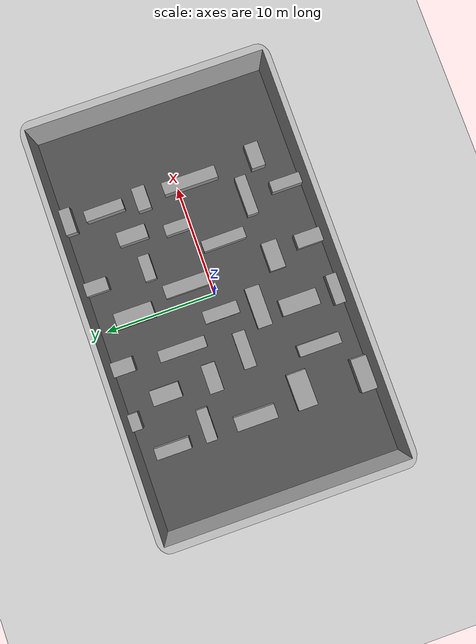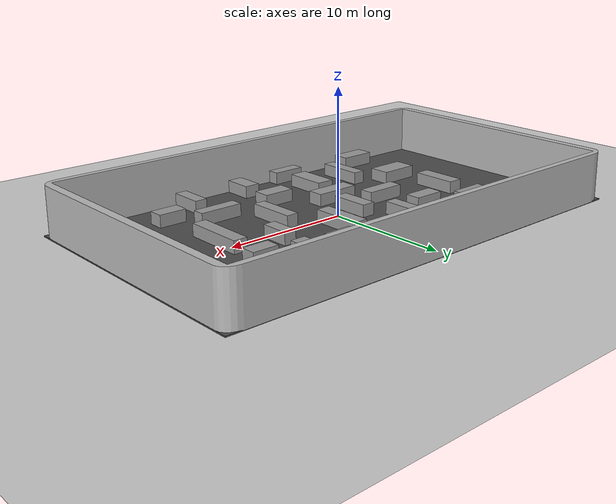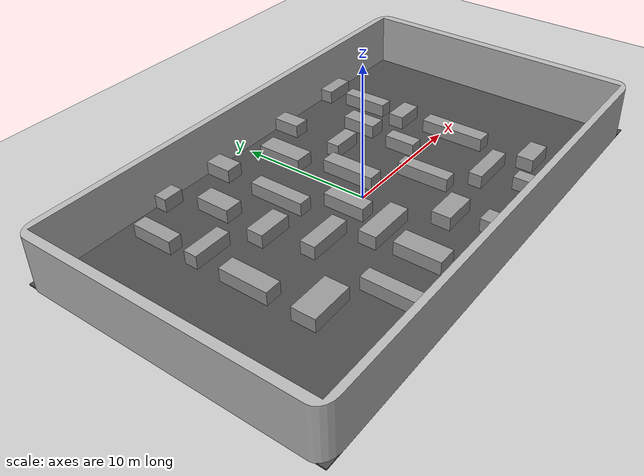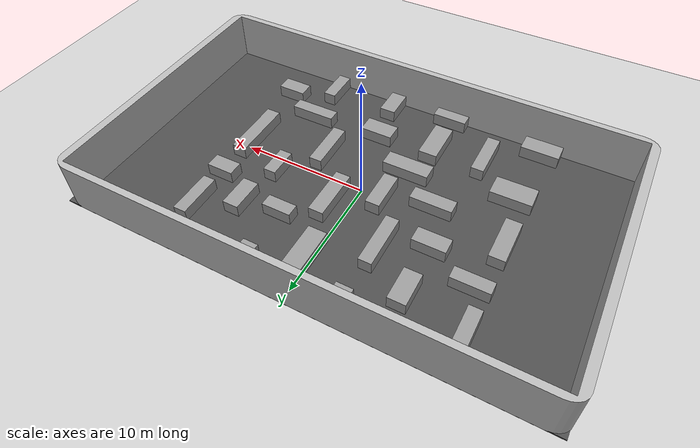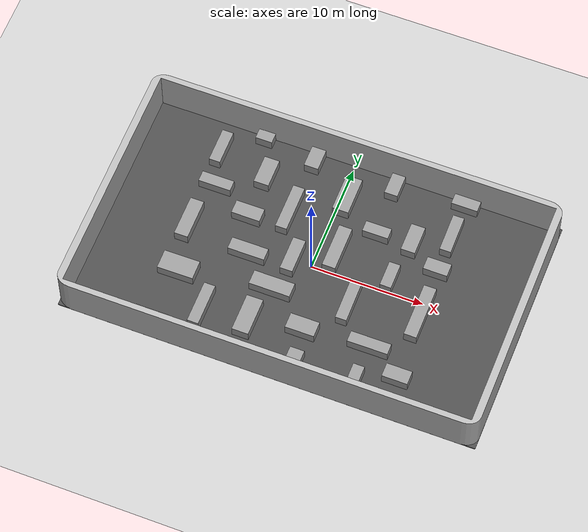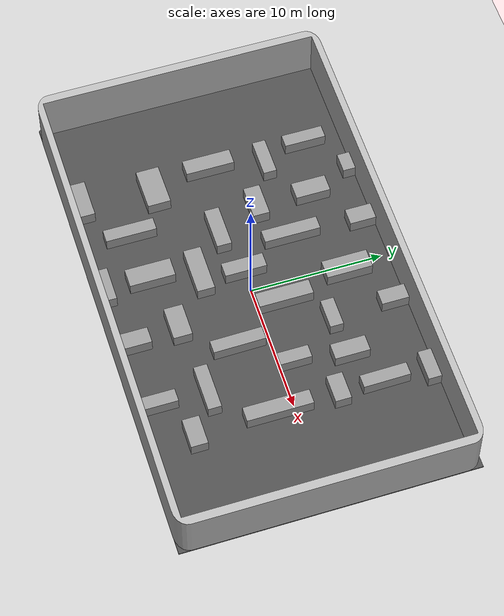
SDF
<sdf version="1.6">
 <world name="default">
  <light name="sun" type="directional">
   <cast_shadows>0</cast_shadows>
   <pose>0 0 100 0 -0 0</pose>
   <diffuse>0.8 0.8 0.8 1</diffuse>
   <specular>0.1 0.1 0.1 1</specular>
   <attenuation>
    <range>1000</range>
    <constant>0.9</constant>
    <linear>0.01</linear>
    <quadratic>0.001</quadratic>
   </attenuation>
   <direction>0 0 -1</direction>
  </light>
  <model name="ground_plane">
   <static>1</static>
   <link name="link">
    <collision name="collision">
     <geometry><plane><normal>0 0 1</normal><size>100 100</size></plane></geometry>
     <surface><friction><ode><mu>100</mu><mu2>50</mu2></ode></friction></surface>
    </collision>
    <visual name="visual">
     <cast_shadows>0</cast_shadows>
     <geometry><plane><normal>0 0 1</normal><size>100 100</size></plane></geometry>
     <material>
      <script><uri>file://media/materials/scripts/gazebo.material</uri><name>Gazebo/Grey</name></script>
     </material>
    </visual>
   </link>
  </model>
  <gravity>0 0 -9.8</gravity>
  <magnetic_field>6e-06 2.3e-05 -4.2e-05</magnetic_field>
  <atmosphere type="adiabatic"/>
  <physics name="default_physics" default="0" type="ode">
   <max_step_size>0.001</max_step_size>
   <real_time_factor>1</real_time_factor>
   <real_time_update_rate>1000</real_time_update_rate>
  </physics>
  <scene><ambient>0.4 0.4 0.4 1</ambient><background>0.7 0.7 0.7 1</background><shadows>1</shadows></scene>
  <spherical_coordinates>
   <surface_model>EARTH_WGS84</surface_model>
   <latitude_deg>0</latitude_deg>
   <longitude_deg>0</longitude_deg>
   <elevation>0</elevation>
   <heading_deg>0</heading_deg>
  </spherical_coordinates>
  <model name="asphalt_plane">
   <static>1</static>
   <link name="link">
    <collision name="collision"><geometry><box><size>37 22 0.1</size></box></geometry></collision>
    <visual name="visual">
     <cast_shadows>0</cast_shadows>
     <geometry><box><size>37 22 0.1</size></box></geometry>
     <material>
      <script>
       <uri>model://asphalt_plane/materials/scripts</uri>
       <uri>model://asphalt_plane/materials/textures</uri>
       <name>vrc/asphalt</name>
      </script>
     </material>
    </visual>
   </link>
   <pose>0.054655 0.000182 0 0 -0 0</pose>
  </model>
  <model name="yard_square">
   <pose>0 0 0 1.5708 -0 1.5708</pose>
   <static>1</static>
   <link name="body">
    <collision name="collision">
     <geometry><mesh><uri>model://yard_square/yard_square.stl</uri><scale>0.1 0.1 0.13</scale></mesh></geometry>
    </collision>
    <visual name="visual">
     <geometry><mesh><uri>model://yard_square/yard_square.stl</uri><scale>0.1 0.1 0.13</scale></mesh></geometry>
    </visual>
   </link>
  </model>
  <audio><device>default</device></audio>
  <model name="unit_box_0">
   <pose>-1.67304 0.014335 0.550002 -8e-06 -0 4.5e-05</pose>
   <static>1</static>
   <link name="link">
    <inertial>
     <mass>1</mass>
     <inertia>
      <ixx>0.166667</ixx>
      <ixy>0</ixy>
      <ixz>0</ixz>
      <iyy>0.166667</iyy>
      <iyz>0</iyz>
      <izz>0.166667</izz>
     </inertia>
    </inertial>
    <collision name="collision"><geometry><box><size>1.12328 3.14231 1</size></box></geometry></collision>
    <visual name="visual">
     <geometry><box><size>1.12328 3.14231 1</size></box></geometry>
     <material>
      <script><name>Gazebo/Grey</name><uri>file://media/materials/scripts/gazebo.material</uri></script>
     </material>
    </visual>
   </link>
  </model>
  <model name="unit_box_2">
   <pose>0.511002 7.15924 0.549996 -7e-06 -0 0.001667</pose>
   <static>1</static>
   <link name="link">
    <inertial>
     <mass>1</mass>
     <inertia>
      <ixx>0.166667</ixx>
      <ixy>0</ixy>
      <ixz>0</ixz>
      <iyy>0.166667</iyy>
      <iyz>0</iyz>
      <izz>0.166667</izz>
     </inertia>
    </inertial>
    <collision name="collision"><geometry><box><size>1.4552 3.44615 1</size></box></geometry></collision>
    <visual name="visual">
     <geometry><box><size>1.4552 3.44615 1</size></box></geometry>
     <material>
      <script><name>Gazebo/Grey</name><uri>file://media/materials/scripts/gazebo.material</uri></script>
     </material>
    </visual>
   </link>
  </model>
  <model name="unit_box_3">
   <pose>3.96739 9.65811 0.549227 0 0.000383 -0.000473</pose>
   <static>1</static>
   <link name="link">
    <inertial>
     <mass>1</mass>
     <inertia>
      <ixx>0.166667</ixx>
      <ixy>0</ixy>
      <ixz>0</ixz>
      <iyy>0.166667</iyy>
      <iyz>0</iyz>
      <izz>0.166667</izz>
     </inertia>
    </inertial>
    <collision name="collision"><geometry><box><size>1.18061 2.38675 1</size></box></geometry></collision>
    <visual name="visual">
     <geometry><box><size>1.18061 2.38675 1</size></box></geometry>
     <material>
      <script><name>Gazebo/Grey</name><uri>file://media/materials/scripts/gazebo.material</uri></script>
     </material>
    </visual>
   </link>
  </model>
  <model name="unit_box_4">
   <pose>-10.2534 -4.3352 0.544487 0 -0 0.009696</pose>
   <static>1</static>
   <link name="link">
    <inertial>
     <mass>1</mass>
     <inertia>
      <ixx>0.166667</ixx>
      <ixy>0</ixy>
      <ixz>0</ixz>
      <iyy>0.166667</iyy>
      <iyz>0</iyz>
      <izz>0.166667</izz>
     </inertia>
    </inertial>
    <collision name="collision"><geometry><box><size>3.1937 1.73528 1</size></box></geometry></collision>
    <visual name="visual">
     <geometry><box><size>3.1937 1.73528 1</size></box></geometry>
     <material>
      <script><name>Gazebo/Grey</name><uri>file://media/materials/scripts/gazebo.material</uri></script>
     </material>
    </visual>
   </link>
  </model>
  <model name="unit_box_5">
   <pose>-2.28776 -3.21003 0.549982 0 1.7e-05 -1.57091</pose>
   <static>1</static>
   <link name="link">
    <inertial>
     <mass>1</mass>
     <inertia>
      <ixx>0.166667</ixx>
      <ixy>0</ixy>
      <ixz>0</ixz>
      <iyy>0.166667</iyy>
      <iyz>0</iyz>
      <izz>0.166667</izz>
     </inertia>
    </inertial>
    <collision name="collision"><geometry><box><size>1.31392 3.64155 1</size></box></geometry></collision>
    <visual name="visual">
     <geometry><box><size>1.31392 3.64155 1</size></box></geometry>
     <material>
      <script><name>Gazebo/Grey</name><uri>file://media/materials/scripts/gazebo.material</uri></script>
     </material>
    </visual>
   </link>
  </model>
  <model name="unit_box_9">
   <pose>7.25696 -5.48595 0.549886 0 -7.9e-05 0.003843</pose>
   <static>1</static>
   <link name="link">
    <inertial>
     <mass>1</mass>
     <inertia>
      <ixx>0.166667</ixx>
      <ixy>0</ixy>
      <ixz>0</ixz>
      <iyy>0.166667</iyy>
      <iyz>0</iyz>
      <izz>0.166667</izz>
     </inertia>
    </inertial>
    <collision name="collision"><geometry><box><size>3.55853 1 1</size></box></geometry></collision>
    <visual name="visual">
     <geometry><box><size>3.55853 1 1</size></box></geometry>
     <material>
      <script><name>Gazebo/Grey</name><uri>file://media/materials/scripts/gazebo.material</uri></script>
     </material>
    </visual>
   </link>
  </model>
  <model name="unit_box_10">
   <pose>-5.38244 -0.821402 0.547399 -0.000838 0 0</pose>
   <static>1</static>
   <link name="link">
    <inertial>
     <mass>1</mass>
     <inertia>
      <ixx>0.166667</ixx>
      <ixy>0</ixy>
      <ixz>0</ixz>
      <iyy>0.166667</iyy>
      <iyz>0</iyz>
      <izz>0.166667</izz>
     </inertia>
    </inertial>
    <collision name="collision"><geometry><box><size>3.27683 1.11673 1</size></box></geometry></collision>
    <visual name="visual">
     <geometry><box><size>3.27683 1.11673 1</size></box></geometry>
     <material>
      <script><name>Gazebo/Grey</name><uri>file://media/materials/scripts/gazebo.material</uri></script>
     </material>
    </visual>
   </link>
  </model>
  <model name="unit_box_1">
   <pose>10.1743 -1.20922 0.550023 6e-06 -0 0.000254</pose>
   <static>1</static>
   <link name="link">
    <inertial>
     <mass>1</mass>
     <inertia>
      <ixx>0.166667</ixx>
      <ixy>0</ixy>
      <ixz>0</ixz>
      <iyy>0.166667</iyy>
      <iyz>0</iyz>
      <izz>0.166667</izz>
     </inertia>
    </inertial>
    <collision name="collision"><geometry><box><size>1.12056 4.92766 1</size></box></geometry></collision>
    <visual name="visual">
     <geometry><box><size>1.12056 4.92766 1</size></box></geometry>
     <material>
      <script><name>Gazebo/Grey</name><uri>file://media/materials/scripts/gazebo.material</uri></script>
     </material>
    </visual>
   </link>
  </model>
  <model name="unit_box_6">
   <pose>-3.56495 4.1999 0.549214 -0.00038 0 7.5e-05</pose>
   <static>1</static>
   <link name="link">
    <inertial>
     <mass>1</mass>
     <inertia>
      <ixx>0.166667</ixx>
      <ixy>0</ixy>
      <ixz>0</ixz>
      <iyy>0.166667</iyy>
      <iyz>0</iyz>
      <izz>0.166667</izz>
     </inertia>
    </inertial>
    <collision name="collision"><geometry><box><size>1.02781 4.24453 1</size></box></geometry></collision>
    <visual name="visual">
     <geometry><box><size>1.02781 4.24453 1</size></box></geometry>
     <material>
      <script><name>Gazebo/Grey</name><uri>file://media/materials/scripts/gazebo.material</uri></script>
     </material>
    </visual>
   </link>
  </model>
  <model name="unit_box_8">
   <pose>-3.09555 -6.66525 0.549084 0.00039 -0 0</pose>
   <static>1</static>
   <link name="link">
    <inertial>
     <mass>1</mass>
     <inertia>
      <ixx>0.166667</ixx>
      <ixy>0</ixy>
      <ixz>0</ixz>
      <iyy>0.166667</iyy>
      <iyz>0</iyz>
      <izz>0.166667</izz>
     </inertia>
    </inertial>
    <collision name="collision"><geometry><box><size>1.46752 3.42649 1</size></box></geometry></collision>
    <visual name="visual">
     <geometry><box><size>1.46752 3.42649 1</size></box></geometry>
     <material>
      <script><name>Gazebo/Grey</name><uri>file://media/materials/scripts/gazebo.material</uri></script>
     </material>
    </visual>
   </link>
  </model>
  <model name="unit_box_11">
   <pose>1.53934 2.04591 0.552867 0.00034 -0 0</pose>
   <static>1</static>
   <link name="link">
    <inertial>
     <mass>1</mass>
     <inertia>
      <ixx>0.166667</ixx>
      <ixy>0</ixy>
      <ixz>0</ixz>
      <iyy>0.166667</iyy>
      <iyz>0</iyz>
      <izz>0.166667</izz>
     </inertia>
    </inertial>
    <collision name="collision"><geometry><box><size>1.17874 4.07362 1</size></box></geometry></collision>
    <visual name="visual">
     <geometry><box><size>1.17874 4.07362 1</size></box></geometry>
     <material>
      <script><name>Gazebo/Grey</name><uri>file://media/materials/scripts/gazebo.material</uri></script>
     </material>
    </visual>
   </link>
  </model>
  <model name="unit_box_12">
   <pose>7.22515 5.1045 0.547927 -0.000766 0 0</pose>
   <static>1</static>
   <link name="link">
    <inertial>
     <mass>1</mass>
     <inertia>
      <ixx>0.166667</ixx>
      <ixy>0</ixy>
      <ixz>0</ixz>
      <iyy>0.166667</iyy>
      <iyz>0</iyz>
      <izz>0.166667</izz>
     </inertia>
    </inertial>
    <collision name="collision"><geometry><box><size>1.25351 2.6176 1</size></box></geometry></collision>
    <visual name="visual">
     <geometry><box><size>1.25351 2.6176 1</size></box></geometry>
     <material>
      <script><name>Gazebo/Grey</name><uri>file://media/materials/scripts/gazebo.material</uri></script>
     </material>
    </visual>
   </link>
  </model>
  <model name="unit_box_13">
   <pose>1.92941 -9.39136 0.549997 6e-06 -0 0.000172</pose>
   <static>1</static>
   <link name="link">
    <inertial>
     <mass>1</mass>
     <inertia>
      <ixx>0.166667</ixx>
      <ixy>0</ixy>
      <ixz>0</ixz>
      <iyy>0.166667</iyy>
      <iyz>0</iyz>
      <izz>0.166667</izz>
     </inertia>
    </inertial>
    <collision name="collision"><geometry><box><size>1.26783 2.46342 1</size></box></geometry></collision>
    <visual name="visual">
     <geometry><box><size>1.26783 2.46342 1</size></box></geometry>
     <material>
      <script><name>Gazebo/Grey</name><uri>file://media/materials/scripts/gazebo.material</uri></script>
     </material>
    </visual>
   </link>
  </model>
  <model name="unit_box_2_clone">
   <pose>-8.09503 10.0713 0.549998 -7e-06 -0 0.001667</pose>
   <static>1</static>
   <link name="link">
    <inertial>
     <mass>1</mass>
     <inertia>
      <ixx>0.166667</ixx>
      <ixy>0</ixy>
      <ixz>0</ixz>
      <iyy>0.166667</iyy>
      <iyz>0</iyz>
      <izz>0.166667</izz>
     </inertia>
    </inertial>
    <collision name="collision"><geometry><box><size>1.5 1 1</size></box></geometry></collision>
    <visual name="visual">
     <geometry><box><size>1.5 1 1</size></box></geometry>
     <material>
      <script><name>Gazebo/Grey</name><uri>file://media/materials/scripts/gazebo.material</uri></script>
     </material>
    </visual>
   </link>
  </model>
  <model name="unit_box_14">
   <pose>-11.158 0.193327 0.55 0 -0 0</pose>
   <static>1</static>
   <link name="link">
    <inertial>
     <mass>1</mass>
     <inertia>
      <ixx>0.166667</ixx>
      <ixy>0</ixy>
      <ixz>0</ixz>
      <iyy>0.166667</iyy>
      <iyz>0</iyz>
      <izz>0.166667</izz>
     </inertia>
    </inertial>
    <collision name="collision"><geometry><box><size>1.22641 3.68175 1</size></box></geometry></collision>
    <visual name="visual">
     <geometry><box><size>1.22641 3.68175 1</size></box></geometry>
     <material>
      <script><name>Gazebo/Grey</name><uri>file://media/materials/scripts/gazebo.material</uri></script>
     </material>
    </visual>
   </link>
  </model>
  <model name="unit_box_16">
   <pose>-11.2712 7.72064 0.549961 3.4e-05 -0 0</pose>
   <static>1</static>
   <link name="link">
    <inertial>
     <mass>1</mass>
     <inertia>
      <ixx>0.166667</ixx>
      <ixy>0</ixy>
      <ixz>0</ixz>
      <iyy>0.166667</iyy>
      <iyz>0</iyz>
      <izz>0.166667</izz>
     </inertia>
    </inertial>
    <collision name="collision"><geometry><box><size>1 3.13508 1</size></box></geometry></collision>
    <visual name="visual">
     <geometry><box><size>1 3.13508 1</size></box></geometry>
     <material>
      <script><name>Gazebo/Grey</name><uri>file://media/materials/scripts/gazebo.material</uri></script>
     </material>
    </visual>
   </link>
  </model>
  <model name="unit_box_17">
   <pose>-10.7177 -9.8351 0.549948 4.3e-05 0 -1e-06</pose>
   <static>1</static>
   <link name="link">
    <inertial>
     <mass>1</mass>
     <inertia>
      <ixx>0.166667</ixx>
      <ixy>0</ixy>
      <ixz>0</ixz>
      <iyy>0.166667</iyy>
      <iyz>0</iyz>
      <izz>0.166667</izz>
     </inertia>
    </inertial>
    <collision name="collision"><geometry><box><size>2.98242 1.49188 1</size></box></geometry></collision>
    <visual name="visual">
     <geometry><box><size>2.98242 1.49188 1</size></box></geometry>
     <material>
      <script><name>Gazebo/Grey</name><uri>file://media/materials/scripts/gazebo.material</uri></script>
     </material>
    </visual>
   </link>
  </model>
  <model name="unit_box_19">
   <pose>-3.04023 -10.0448 0.55 0 -0 0</pose>
   <static>1</static>
   <link name="link">
    <inertial>
     <mass>1</mass>
     <inertia>
      <ixx>0.166667</ixx>
      <ixy>0</ixy>
      <ixz>0</ixz>
      <iyy>0.166667</iyy>
      <iyz>0</iyz>
      <izz>0.166667</izz>
     </inertia>
    </inertial>
    <collision name="collision"><geometry><box><size>2.69644 1 1</size></box></geometry></collision>
    <visual name="visual">
     <geometry><box><size>2.69644 1 1</size></box></geometry>
     <material>
      <script><name>Gazebo/Grey</name><uri>file://media/materials/scripts/gazebo.material</uri></script>
     </material>
    </visual>
   </link>
  </model>
  <model name="unit_box">
   <pose>6.63649 1.13052 0.549958 3.6e-05 -0 0</pose>
   <static>1</static>
   <link name="link">
    <inertial>
     <mass>1</mass>
     <inertia>
      <ixx>0.166667</ixx>
      <ixy>0</ixy>
      <ixz>0</ixz>
      <iyy>0.166667</iyy>
      <iyz>0</iyz>
      <izz>0.166667</izz>
     </inertia>
    </inertial>
    <collision name="collision"><geometry><box><size>1 2.339 1</size></box></geometry></collision>
    <visual name="visual">
     <geometry><box><size>1 2.339 1</size></box></geometry>
     <material>
      <script><name>Gazebo/Grey</name><uri>file://media/materials/scripts/gazebo.material</uri></script>
     </material>
    </visual>
   </link>
  </model>
  <model name="unit_box_7">
   <pose>-10.3519 4.34763 0.549996 -9e-06 -0 0.000673</pose>
   <static>1</static>
   <link name="link">
    <inertial>
     <mass>1</mass>
     <inertia>
      <ixx>0.166667</ixx>
      <ixy>0</ixy>
      <ixz>0</ixz>
      <iyy>0.166667</iyy>
      <iyz>0</iyz>
      <izz>0.166667</izz>
     </inertia>
    </inertial>
    <collision name="collision"><geometry><box><size>2.89155 1 1</size></box></geometry></collision>
    <visual name="visual">
     <geometry><box><size>2.89155 1 1</size></box></geometry>
     <material>
      <script><name>Gazebo/Grey</name><uri>file://media/materials/scripts/gazebo.material</uri></script>
     </material>
    </visual>
   </link>
  </model>
  <model name="unit_box_15">
   <pose>-3.33649 9.52546 0.549986 1.4e-05 -0 -3.1e-05</pose>
   <static>1</static>
   <link name="link">
    <inertial>
     <mass>1</mass>
     <inertia>
      <ixx>0.166667</ixx>
      <ixy>0</ixy>
      <ixz>0</ixz>
      <iyy>0.166667</iyy>
      <iyz>0</iyz>
      <izz>0.166667</izz>
     </inertia>
    </inertial>
    <collision name="collision"><geometry><box><size>1.28707 1.98363 1</size></box></geometry></collision>
    <visual name="visual">
     <geometry><box><size>1.28707 1.98363 1</size></box></geometry>
     <material>
      <script><name>Gazebo/Grey</name><uri>file://media/materials/scripts/gazebo.material</uri></script>
     </material>
    </visual>
   </link>
  </model>
  <model name="unit_box_20">
   <pose>10.048 3.30315 0.549995 -8e-06 -0 2.5e-05</pose>
   <static>1</static>
   <link name="link">
    <inertial>
     <mass>1</mass>
     <inertia>
      <ixx>0.166667</ixx>
      <ixy>0</ixy>
      <ixz>0</ixz>
      <iyy>0.166667</iyy>
      <iyz>0</iyz>
      <izz>0.166667</izz>
     </inertia>
    </inertial>
    <collision name="collision"><geometry><box><size>2.13783 1.1928 1</size></box></geometry></collision>
    <visual name="visual">
     <geometry><box><size>2.13783 1.1928 1</size></box></geometry>
     <material>
      <script><name>Gazebo/Grey</name><uri>file://media/materials/scripts/gazebo.material</uri></script>
     </material>
    </visual>
   </link>
  </model>
  <model name="unit_box_21">
   <pose>10.3984 -7.35049 0.549995 -8e-06 0 7.4e-05</pose>
   <static>1</static>
   <link name="link">
    <inertial>
     <mass>1</mass>
     <inertia>
      <ixx>0.166667</ixx>
      <ixy>0</ixy>
      <ixz>0</ixz>
      <iyy>0.166667</iyy>
      <iyz>0</iyz>
      <izz>0.166667</izz>
     </inertia>
    </inertial>
    <collision name="collision"><geometry><box><size>2.25359 1.25074 1</size></box></geometry></collision>
    <visual name="visual">
     <geometry><box><size>2.25359 1.25074 1</size></box></geometry>
     <material>
      <script><name>Gazebo/Grey</name><uri>file://media/materials/scripts/gazebo.material</uri></script>
     </material>
    </visual>
   </link>
  </model>
  <model name="unit_box_22">
   <pose>10.2149 10.0177 0.549959 0 3.5e-05 -1.6e-05</pose>
   <static>1</static>
   <link name="link">
    <inertial>
     <mass>1</mass>
     <inertia>
      <ixx>0.166667</ixx>
      <ixy>0</ixy>
      <ixz>0</ixz>
      <iyy>0.166667</iyy>
      <iyz>0</iyz>
      <izz>0.166667</izz>
     </inertia>
    </inertial>
    <collision name="collision"><geometry><box><size>2.33197 1 1</size></box></geometry></collision>
    <visual name="visual">
     <geometry><box><size>2.33197 1 1</size></box></geometry>
     <material>
      <script><name>Gazebo/Grey</name><uri>file://media/materials/scripts/gazebo.material</uri></script>
     </material>
    </visual>
   </link>
  </model>
  <model name="unit_box_23">
   <pose>-6.74681 2.57725 0.549928 0 5.7e-05 9e-06</pose>
   <static>1</static>
   <link name="link">
    <inertial>
     <mass>1</mass>
     <inertia>
      <ixx>0.166667</ixx>
      <ixy>0</ixy>
      <ixz>0</ixz>
      <iyy>0.166667</iyy>
      <iyz>0</iyz>
      <izz>0.166667</izz>
     </inertia>
    </inertial>
    <collision name="collision"><geometry><box><size>2.55838 1.25065 1</size></box></geometry></collision>
    <visual name="visual">
     <geometry><box><size>2.55838 1.25065 1</size></box></geometry>
     <material>
      <script><name>Gazebo/Grey</name><uri>file://media/materials/scripts/gazebo.material</uri></script>
     </material>
    </visual>
   </link>
  </model>
  <model name="unit_box_25">
   <pose>4.09031 4.7974 0.549995 -9e-06 0 -0.000135</pose>
   <static>1</static>
   <link name="link">
    <inertial>
     <mass>1</mass>
     <inertia>
      <ixx>0.166667</ixx>
      <ixy>0</ixy>
      <ixz>0</ixz>
      <iyy>0.166667</iyy>
      <iyz>0</iyz>
      <izz>0.166667</izz>
     </inertia>
    </inertial>
    <collision name="collision"><geometry><box><size>2.29351 1 1</size></box></geometry></collision>
    <visual name="visual">
     <geometry><box><size>2.29351 1 1</size></box></geometry>
     <material>
      <script><name>Gazebo/Grey</name><uri>file://media/materials/scripts/gazebo.material</uri></script>
     </material>
    </visual>
   </link>
  </model>
  <model name="unit_box_26">
   <pose>-6.72133 6.78654 0.55 0 -0 0.000713</pose>
   <static>1</static>
   <link name="link">
    <inertial>
     <mass>1</mass>
     <inertia>
      <ixx>0.166667</ixx>
      <ixy>0</ixy>
      <ixz>0</ixz>
      <iyy>0.166667</iyy>
      <iyz>0</iyz>
      <izz>0.166667</izz>
     </inertia>
    </inertial>
    <collision name="collision"><geometry><box><size>1.35161 2.61855 1</size></box></geometry></collision>
    <visual name="visual">
     <geometry><box><size>1.35161 2.61855 1</size></box></geometry>
     <material>
      <script><name>Gazebo/Grey</name><uri>file://media/materials/scripts/gazebo.material</uri></script>
     </material>
    </visual>
   </link>
  </model>
  <model name="unit_box_27">
   <pose>10.1169 6.72521 0.549999 0 -2e-06 0.011011</pose>
   <static>1</static>
   <link name="link">
    <inertial>
     <mass>1</mass>
     <inertia>
      <ixx>0.166667</ixx>
      <ixy>0</ixy>
      <ixz>0</ixz>
      <iyy>0.166667</iyy>
      <iyz>0</iyz>
      <izz>0.166667</izz>
     </inertia>
    </inertial>
    <collision name="collision"><geometry><box><size>1 3.50494 1</size></box></geometry></collision>
    <visual name="visual">
     <geometry><box><size>1 3.50494 1</size></box></geometry>
     <material>
      <script><name>Gazebo/Grey</name><uri>file://media/materials/scripts/gazebo.material</uri></script>
     </material>
    </visual>
   </link>
  </model>
  <model name="unit_box_28">
   <pose>4.24325 -2.30415 0.55 0 -0 0.011497</pose>
   <static>1</static>
   <link name="link">
    <inertial>
     <mass>1</mass>
     <inertia>
      <ixx>0.166667</ixx>
      <ixy>0</ixy>
      <ixz>0</ixz>
      <iyy>0.166667</iyy>
      <iyz>0</iyz>
      <izz>0.166667</izz>
     </inertia>
    </inertial>
    <collision name="collision"><geometry><box><size>1 3.89988 1</size></box></geometry></collision>
    <visual name="visual">
     <geometry><box><size>1 3.89988 1</size></box></geometry>
     <material>
      <script><name>Gazebo/Grey</name><uri>file://media/materials/scripts/gazebo.material</uri></script>
     </material>
    </visual>
   </link>
  </model>
  <model name="unit_box_29">
   <pose>-7.08969 -7.05348 0.549404 -0.000312 0 0</pose>
   <static>1</static>
   <link name="link">
    <inertial>
     <mass>1</mass>
     <inertia>
      <ixx>0.166667</ixx>
      <ixy>0</ixy>
      <ixz>0</ixz>
      <iyy>0.166667</iyy>
      <iyz>0</iyz>
      <izz>0.166667</izz>
     </inertia>
    </inertial>
    <collision name="collision"><geometry><box><size>1 3.8184 1</size></box></geometry></collision>
    <visual name="visual">
     <geometry><box><size>1 3.8184 1</size></box></geometry>
     <material>
      <script><name>Gazebo/Grey</name><uri>file://media/materials/scripts/gazebo.material</uri></script>
     </material>
    </visual>
   </link>
  </model>
  <model name="unit_box_30">
   <pose>7.2139 -9.11678 0.549885 8.3e-05 -0 -2e-06</pose>
   <static>1</static>
   <link name="link">
    <inertial>
     <mass>1</mass>
     <inertia>
      <ixx>0.166667</ixx>
      <ixy>0</ixy>
      <ixz>0</ixz>
      <iyy>0.166667</iyy>
      <iyz>0</iyz>
      <izz>0.166667</izz>
     </inertia>
    </inertial>
    <collision name="collision"><geometry><box><size>1 2.77429 1</size></box></geometry></collision>
    <visual name="visual">
     <geometry><box><size>1 2.77429 1</size></box></geometry>
     <material>
      <script><name>Gazebo/Grey</name><uri>file://media/materials/scripts/gazebo.material</uri></script>
     </material>
    </visual>
   </link>
  </model>
  <model name="unit_box_31">
   <pose>1.49662 -5.92423 0.55 0 -0 9e-05</pose>
   <static>1</static>
   <link name="link">
    <inertial>
     <mass>1</mass>
     <inertia>
      <ixx>0.166667</ixx>
      <ixy>0</ixy>
      <ixz>0</ixz>
      <iyy>0.166667</iyy>
      <iyz>0</iyz>
      <izz>0.166667</izz>
     </inertia>
    </inertial>
    <collision name="collision"><geometry><box><size>2.56823 1.40491 1</size></box></geometry></collision>
    <visual name="visual">
     <geometry><box><size>2.56823 1.40491 1</size></box></geometry>
     <material>
      <script><name>Gazebo/Grey</name><uri>file://media/materials/scripts/gazebo.material</uri></script>
     </material>
    </visual>
   </link>
  </model>
 </world>
</sdf>
